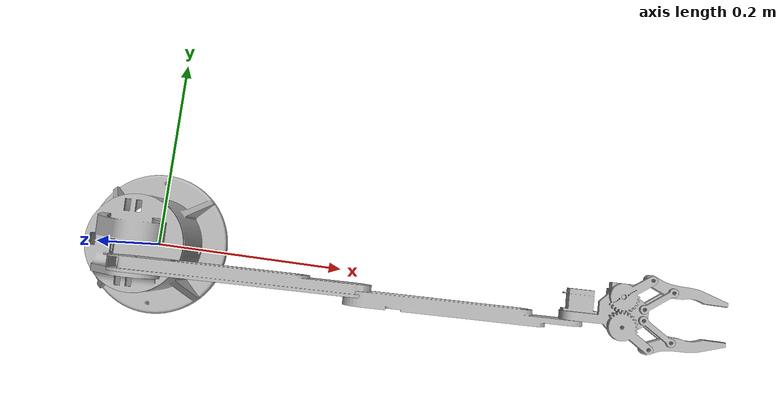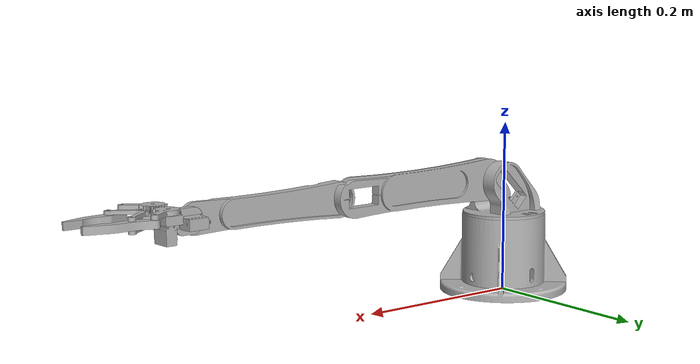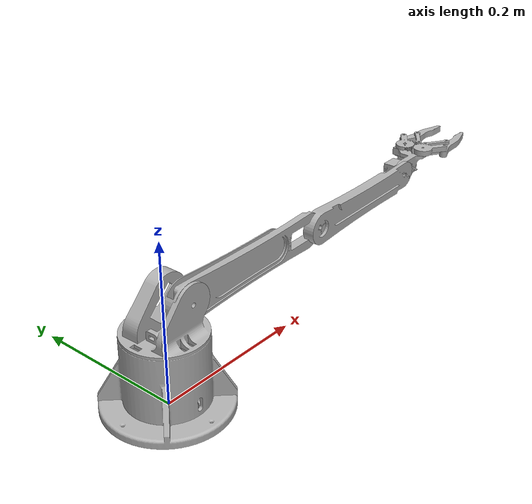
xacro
<?xml version="1.0" ?>
<robot name="RIVO" xmlns:xacro="http://www.ros.org/wiki/xacro">
  <xacro:include filename="$(find RIVO_description)/urdf/materials.xacro" />
  <xacro:include filename="$(find RIVO_description)/urdf/RIVO.trans" />
  <xacro:include filename="$(find RIVO_description)/urdf/RIVO.gazebo" />

  <link name="dummy_link">
    <pose>0 0 0 0 0 0</pose>
  </link>

  <joint name="dummy_joint" type="fixed">
    <parent link="dummy_link"/>
    <child link="base_link"/>
  </joint>

  <link name="base_link">
    <inertial>
      <origin xyz="0.002894864480150963 0.0004061893631920555 0.029121311645850093" rpy="0 0 0"/>
      <mass value="100.3408931898157137"/>
      <inertia ixx="45.21" iyy="48.86" izz="60.7" ixy="4e-02" iyz="-9e-02" ixz="5.9e-01"/>
    </inertial>
    <visual>
      <origin xyz="0 0 0" rpy="0 0 0"/>
      <geometry>
        <mesh filename="package://RIVO_description/meshes/base_link.stl" scale="0.001 0.001 0.001"/>
      </geometry>
      <material name="silver"/>
    </visual>
    <collision>
      <origin xyz="0 0 0" rpy="0 0 0"/>
      <geometry>
        <mesh filename="package://RIVO_description/meshes/base_link.stl" scale="0.001 0.001 0.001"/>
      </geometry>
    </collision>
  </link>

  <link name="link_2_1">
    <inertial>
      <origin xyz="0.002083562313261399 -0.003064482171298019 0.019940090429391252" rpy="0 0 0"/>
      <mass value="0.688307702528786"/>
      <inertia ixx="0.000549" iyy="0.000566" izz="0.000619" ixy="6e-06" iyz="1.3e-05" ixz="-6.5e-05"/>
    </inertial>
    <visual>
      <origin xyz="3.5e-05 -1.6e-05 -0.091498" rpy="0 0 0"/>
      <geometry>
        <mesh filename="package://RIVO_description/meshes/link_2_1.stl" scale="0.001 0.001 0.001"/>
      </geometry>
      <material name="silver"/>
    </visual>
    <collision>
      <origin xyz="3.5e-05 -1.6e-05 -0.091498" rpy="0 0 0"/>
      <geometry>
        <mesh filename="package://RIVO_description/meshes/link_2_1.stl" scale="0.001 0.001 0.001"/>
      </geometry>
    </collision>
  </link>

  <link name="link_4_1">
    <inertial>
      <origin xyz="0.08125834087790981 -0.001122555428102228 0.0002941862194928979" rpy="0 0 0"/>
      <mass value="0.46578916720940555"/>
      <inertia ixx="6.1e-05" iyy="0.001753" izz="0.001704" ixy="-4.8e-05" iyz="-0.0" ixz="-1.2e-05"/>
    </inertial>
    <visual>
      <origin xyz="-0.231507 0.019199 -0.131143" rpy="0 0 0"/>
      <geometry>
        <mesh filename="package://RIVO_description/meshes/link_4_1.stl" scale="0.001 0.001 0.001"/>
      </geometry>
      <material name="silver"/>
    </visual>
    <collision>
      <origin xyz="-0.231507 0.019199 -0.131143" rpy="0 0 0"/>
      <geometry>
        <mesh filename="package://RIVO_description/meshes/link_4_1.stl" scale="0.001 0.001 0.001"/>
      </geometry>
    </collision>
  </link>

  <link name="g_part_12_1">
    <inertial>
      <origin xyz="0.012456635259577353 0.009213868537273885 0.0020449037369225376" rpy="0 0 0"/>
      <mass value="0.006270284943512531"/>
      <inertia ixx="0.0" iyy="1e-06" izz="1e-06" ixy="-0.0" iyz="-0.0" ixz="-0.0"/>
    </inertial>
    <visual>
      <origin xyz="-0.484567 -0.00431 -0.146738" rpy="0 0 0"/>
      <geometry>
        <mesh filename="package://RIVO_description/meshes/g_part_12_1.stl" scale="0.001 0.001 0.001"/>
      </geometry>
      <material name="silver"/>
    </visual>
    <collision>
      <origin xyz="-0.484567 -0.00431 -0.146738" rpy="0 0 0"/>
      <geometry>
        <mesh filename="package://RIVO_description/meshes/g_part_12_1.stl" scale="0.001 0.001 0.001"/>
      </geometry>
    </collision>
  </link>

  <link name="g_part_4_1">
    <inertial>
      <origin xyz="0.013134263289696746 -0.008251164752194753 0.0019147897203106445" rpy="0 0 0"/>
      <mass value="0.006270284943499826"/>
      <inertia ixx="0.0" iyy="1e-06" izz="1e-06" ixy="0.0" iyz="-0.0" ixz="0.0"/>
    </inertial>
    <visual>
      <origin xyz="-0.484828 0.005686 -0.146663" rpy="0 0 0"/>
      <geometry>
        <mesh filename="package://RIVO_description/meshes/g_part_4_1.stl" scale="0.001 0.001 0.001"/>
      </geometry>
      <material name="silver"/>
    </visual>
    <collision>
      <origin xyz="-0.484828 0.005686 -0.146663" rpy="0 0 0"/>
      <geometry>
        <mesh filename="package://RIVO_description/meshes/g_part_4_1.stl" scale="0.001 0.001 0.001"/>
      </geometry>
    </collision>
  </link>

  <link name="g_part_8_1">
    <inertial>
      <origin xyz="0.0105618667457274 0.00787037076182677 -0.004894936320047616" rpy="0 0 0"/>
      <mass value="0.007386988595910961"/>
      <inertia ixx="0.0" iyy="1e-06" izz="1e-06" ixy="-0.0" iyz="0.0" ixz="0.0"/>
    </inertial>
    <visual>
      <origin xyz="-0.484556 -0.004351 -0.141169" rpy="0 0 0"/>
      <geometry>
        <mesh filename="package://RIVO_description/meshes/g_part_8_1.stl" scale="0.001 0.001 0.001"/>
      </geometry>
      <material name="silver"/>
    </visual>
    <collision>
      <origin xyz="-0.484556 -0.004351 -0.141169" rpy="0 0 0"/>
      <geometry>
        <mesh filename="package://RIVO_description/meshes/g_part_8_1.stl" scale="0.001 0.001 0.001"/>
      </geometry>
    </collision>
  </link>

  <link name="g_part_2_1">
    <inertial>
      <origin xyz="-0.00036726587359098284 0.01348177608821506 -0.00855097204214511" rpy="0 0 0"/>
      <mass value="0.05700410540308347"/>
      <inertia ixx="6e-06" iyy="4e-06" izz="3e-06" ixy="0.0" iyz="0.0" ixz="-0.0"/>
    </inertial>
    <visual>
      <origin xyz="-0.464814 0.006035 -0.136628" rpy="0 0 0"/>
      <geometry>
        <mesh filename="package://RIVO_description/meshes/g_part_2_1.stl" scale="0.001 0.001 0.001"/>
      </geometry>
      <material name="silver"/>
    </visual>
    <collision>
      <origin xyz="-0.464814 0.006035 -0.136628" rpy="0 0 0"/>
      <geometry>
        <mesh filename="package://RIVO_description/meshes/g_part_2_1.stl" scale="0.001 0.001 0.001"/>
      </geometry>
    </collision>
  </link>

  <link name="g_part_9_1">
    <inertial>
      <origin xyz="0.005021384222760994 -0.0025433255854703206 0.0034715138074274954" rpy="0 0 0"/>
      <mass value="0.0362891624976011"/>
      <inertia ixx="3e-06" iyy="4e-06" izz="6e-06" ixy="2e-06" iyz="-0.0" ixz="0.0"/>
    </inertial>
    <visual>
      <origin xyz="-0.465043 0.014202 -0.146068" rpy="0 0 0"/>
      <geometry>
        <mesh filename="package://RIVO_description/meshes/g_part_9_1.stl" scale="0.001 0.001 0.001"/>
      </geometry>
      <material name="silver"/>
    </visual>
    <collision>
      <origin xyz="-0.465043 0.014202 -0.146068" rpy="0 0 0"/>
      <geometry>
        <mesh filename="package://RIVO_description/meshes/g_part_9_1.stl" scale="0.001 0.001 0.001"/>
      </geometry>
    </collision>
  </link>

  <link name="g_part_10_1">
    <inertial>
      <origin xyz="-0.014598965910585904 0.008272324580325768 8.800201478362246e-05" rpy="0 0 0"/>
      <mass value="0.05700410540308428"/>
      <inertia ixx="4e-06" iyy="3e-06" izz="6e-06" ixy="-0.0" iyz="-0.0" ixz="0.0"/>
    </inertial>
    <visual>
      <origin xyz="-0.444042 0.006395 -0.132164" rpy="0 0 0"/>
      <geometry>
        <mesh filename="package://RIVO_description/meshes/g_part_10_1.stl" scale="0.001 0.001 0.001"/>
      </geometry>
      <material name="silver"/>
    </visual>
    <collision>
      <origin xyz="-0.444042 0.006395 -0.132164" rpy="0 0 0"/>
      <geometry>
        <mesh filename="package://RIVO_description/meshes/g_part_10_1.stl" scale="0.001 0.001 0.001"/>
      </geometry>
    </collision>
  </link>

  <link name="g_part_1_1">
    <inertial>
      <origin xyz="0.036423386056162965 0.01149451999851355 0.006746851708180762" rpy="0 0 0"/>
      <mass value="0.1054118615130382"/>
      <inertia ixx="1.9e-05" iyy="4.8e-05" izz="5.5e-05" ixy="-1e-05" iyz="-3e-06" ixz="-9e-06"/>
    </inertial>
    <visual>
      <origin xyz="-0.416441 0.014369 -0.132156" rpy="0 0 0"/>
      <geometry>
        <mesh filename="package://RIVO_description/meshes/g_part_1_1.stl" scale="0.001 0.001 0.001"/>
      </geometry>
      <material name="silver"/>
    </visual>
    <collision>
      <origin xyz="-0.416441 0.014369 -0.132156" rpy="0 0 0"/>
      <geometry>
        <mesh filename="package://RIVO_description/meshes/g_part_1_1.stl" scale="0.001 0.001 0.001"/>
      </geometry>
    </collision>
  </link>

  <link name="g_part_6_1">
    <inertial>
      <origin xyz="0.010217406066357015 -0.0017233499857305518 0.004218909480987715" rpy="0 0 0"/>
      <mass value="0.04741956072106952"/>
      <inertia ixx="1e-06" iyy="1.9e-05" izz="2e-05" ixy="-3e-06" iyz="0.0" ixz="0.0"/>
    </inertial>
    <visual>
      <origin xyz="-0.511072 0.022091 -0.137423" rpy="0 0 0"/>
      <geometry>
        <mesh filename="package://RIVO_description/meshes/g_part_6_1.stl" scale="0.001 0.001 0.001"/>
      </geometry>
      <material name="silver"/>
    </visual>
    <collision>
      <origin xyz="-0.511072 0.022091 -0.137423" rpy="0 0 0"/>
      <geometry>
        <mesh filename="package://RIVO_description/meshes/g_part_6_1.stl" scale="0.001 0.001 0.001"/>
      </geometry>
    </collision>
  </link>

  <link name="g_part_7_1">
    <inertial>
      <origin xyz="0.011136128559519232 -0.006954489521749285 -0.005005307666391873" rpy="0 0 0"/>
      <mass value="0.007386988595910908"/>
      <inertia ixx="0.0" iyy="1e-06" izz="1e-06" ixy="0.0" iyz="-0.0" ixz="0.0"/>
    </inertial>
    <visual>
      <origin xyz="-0.484818 0.005645 -0.141094" rpy="0 0 0"/>
      <geometry>
        <mesh filename="package://RIVO_description/meshes/g_part_7_1.stl" scale="0.001 0.001 0.001"/>
      </geometry>
      <material name="silver"/>
    </visual>
    <collision>
      <origin xyz="-0.484818 0.005645 -0.141094" rpy="0 0 0"/>
      <geometry>
        <mesh filename="package://RIVO_description/meshes/g_part_7_1.stl" scale="0.001 0.001 0.001"/>
      </geometry>
    </collision>
  </link>

  <link name="g_part_3_1">
    <inertial>
      <origin xyz="-0.01973607073111644 -0.01515006847613011 0.002516844630100129" rpy="0 0 0"/>
      <mass value="0.02397572621792568"/>
      <inertia ixx="2e-06" iyy="2e-06" izz="4e-06" ixy="-1e-06" iyz="-0.0" ixz="0.0"/>
    </inertial>
    <visual>
      <origin xyz="-0.489201 -0.031312 -0.146929" rpy="0 0 0"/>
      <geometry>
        <mesh filename="package://RIVO_description/meshes/g_part_3_1.stl" scale="0.001 0.001 0.001"/>
      </geometry>
      <material name="silver"/>
    </visual>
    <collision>
      <origin xyz="-0.489201 -0.031312 -0.146929" rpy="0 0 0"/>
      <geometry>
        <mesh filename="package://RIVO_description/meshes/g_part_3_1.stl" scale="0.001 0.001 0.001"/>
      </geometry>
    </collision>
  </link>

  <link name="g_part_5_1">
    <inertial>
      <origin xyz="0.010187463177970035 0.0018070450955312463 -0.004255435248756628" rpy="0 0 0"/>
      <mass value="0.0474195607210694"/>
      <inertia ixx="1e-06" iyy="1.9e-05" izz="2e-05" ixy="3e-06" iyz="-0.0" ixz="0.0"/>
    </inertial>
    <visual>
      <origin xyz="-0.509473 -0.022767 -0.146828" rpy="0 0 0"/>
      <geometry>
        <mesh filename="package://RIVO_description/meshes/g_part_5_1.stl" scale="0.001 0.001 0.001"/>
      </geometry>
      <material name="silver"/>
    </visual>
    <collision>
      <origin xyz="-0.509473 -0.022767 -0.146828" rpy="0 0 0"/>
      <geometry>
        <mesh filename="package://RIVO_description/meshes/g_part_5_1.stl" scale="0.001 0.001 0.001"/>
      </geometry>
    </collision>
  </link>

  <link name="link_3_1">
    <inertial>
      <origin xyz="0.08880680552106898 0.006923559791520796 -0.001742253363287788" rpy="0 0 0"/>
      <mass value="0.6955411833829301"/>
      <inertia ixx="0.000129" iyy="0.003467" izz="0.003356" ixy="-5.6e-05" iyz="1e-06" ixz="-6e-06"/>
    </inertial>
    <visual>
      <origin xyz="-0.014479 0.022897 -0.131606" rpy="0 0 0"/>
      <geometry>
        <mesh filename="package://RIVO_description/meshes/link_3_1.stl" scale="0.001 0.001 0.001"/>
      </geometry>
      <material name="silver"/>
    </visual>
    <collision>
      <origin xyz="-0.014479 0.022897 -0.131606" rpy="0 0 0"/>
      <geometry>
        <mesh filename="package://RIVO_description/meshes/link_3_1.stl" scale="0.001 0.001 0.001"/>
      </geometry>
    </collision>
  </link>

  <joint name="dof_1" type="revolute">
    <origin xyz="-3.5e-05 1.6e-05 0.091498" rpy="0 0 0"/>
    <parent link="base_link"/>
    <child link="link_2_1"/>
    <axis xyz="2.3e-05 0.007455 -0.999972"/>
    <limit lower="-1.57" upper="1.57" effort="300" velocity="3"/>
  </joint>

  <joint name="dof_2" type="revolute">
    <origin xyz="0.014514 -0.022913 0.040108" rpy="0 0 0"/>
    <parent link="link_2_1"/>
    <child link="link_3_1"/>
    <axis xyz="0.026148 -0.99963 -0.007452"/>
    <limit lower="-1.57" upper="1.57" effort="300" velocity="3"/>
  </joint>

  <joint name="dof_3" type="revolute">
    <origin xyz="0.217028 0.003698 -0.000463" rpy="0 0 0"/>
    <parent link="link_3_1"/>
    <child link="link_4_1"/>
    <axis xyz="0.026148 -0.99963 -0.007452"/>
    <limit lower="-3.142" upper="0" effort="300" velocity="3"/>
  </joint>

  <joint name="dof_4" type="revolute">
    <origin xyz="0.184934 0.00483 0.001013" rpy="0 0 0"/>
    <parent link="link_4_1"/>
    <child link="g_part_1_1"/>
    <axis xyz="0.026148 -0.99963 -0.007452"/>
    <limit lower="-3.142" upper="3.142" effort="300" velocity="3"/>
  </joint>

  <joint name="Rigid 6" type="fixed">
    <origin xyz="0.068126 0.018679 0.014582" rpy="0 0 0"/>
    <parent link="g_part_1_1"/>
    <child link="g_part_12_1"/>
  </joint>

  <joint name="Rigid 9" type="fixed">
    <origin xyz="0.068387 0.008683 0.014507" rpy="0 0 0"/>
    <parent link="g_part_1_1"/>
    <child link="g_part_4_1"/>
  </joint>

  <joint name="Rigid 10" type="fixed">
    <origin xyz="0.068115 0.01872 0.009013" rpy="0 0 0"/>
    <parent link="g_part_1_1"/>
    <child link="g_part_8_1"/>
  </joint>

  <joint name="Rigid 13" type="fixed">
    <origin xyz="0.048373 0.008334 0.004472" rpy="0 0 0"/>
    <parent link="g_part_1_1"/>
    <child link="g_part_2_1"/>
  </joint>

  <joint name="Rigid 14" type="fixed">
    <origin xyz="0.048602 0.000167 0.013912" rpy="0 0 0"/>
    <parent link="g_part_1_1"/>
    <child link="g_part_9_1"/>
  </joint>

  <joint name="Rigid 16" type="fixed">
    <origin xyz="0.027601 0.007974 8e-06" rpy="0 0 0"/>
    <parent link="g_part_1_1"/>
    <child link="g_part_10_1"/>
  </joint>

  <joint name="Rigid 18" type="fixed">
    <origin xyz="0.026254 -0.016446 -0.003671" rpy="0 0 0"/>
    <parent link="g_part_7_1"/>
    <child link="g_part_6_1"/>
  </joint>

  <joint name="Rigid 19" type="fixed">
    <origin xyz="0.068377 0.008724 0.008938" rpy="0 0 0"/>
    <parent link="g_part_1_1"/>
    <child link="g_part_7_1"/>
  </joint>

  <joint name="Rigid 21" type="fixed">
    <origin xyz="-0.020272 0.008545 0.000101" rpy="0 0 0"/>
    <parent link="g_part_5_1"/>
    <child link="g_part_3_1"/>
  </joint>

  <joint name="Rigid 22" type="fixed">
    <origin xyz="0.024906 0.018457 9e-05" rpy="0 0 0"/>
    <parent link="g_part_12_1"/>
    <child link="g_part_5_1"/>
  </joint>
  <transmission name="dof_1_trans">
    <type>transmission_interface/SimpleTransmission</type>

    <joint name="dof_1">
      <hardwareInterface>hardware_interface/EffortJointInterface</hardwareInterface>
    </joint>

    <actuator name="dof_1_motor">
      <hardwareInterface>hardware_interface/EffortJointInterface</hardwareInterface>
      <mechanicalReduction>1</mechanicalReduction>
    </actuator>
  </transmission>

  <transmission name="dof_2_trans">
    <type>transmission_interface/SimpleTransmission</type>

    <joint name="dof_2">
      <hardwareInterface>hardware_interface/EffortJointInterface</hardwareInterface>
    </joint>

    <actuator name="dof_2_motor">
      <hardwareInterface>hardware_interface/EffortJointInterface</hardwareInterface>
      <mechanicalReduction>1</mechanicalReduction>
    </actuator>
  </transmission>

  <transmission name="dof_3_trans">
    <type>transmission_interface/SimpleTransmission</type>

    <joint name="dof_3">
      <hardwareInterface>hardware_interface/EffortJointInterface</hardwareInterface>
    </joint>

    <actuator name="dof_3_motor">
      <hardwareInterface>hardware_interface/EffortJointInterface</hardwareInterface>
      <mechanicalReduction>1</mechanicalReduction>
    </actuator>
  </transmission>

  <transmission name="dof_4_trans">
    <type>transmission_interface/SimpleTransmission</type>

    <joint name="dof_4">
      <hardwareInterface>hardware_interface/EffortJointInterface</hardwareInterface>
    </joint>

    <actuator name="dof_4_motor">
      <hardwareInterface>hardware_interface/EffortJointInterface</hardwareInterface>
      <mechanicalReduction>1</mechanicalReduction>
    </actuator>
  </transmission>
</robot>

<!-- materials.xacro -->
<robot name="RIVO" xmlns:xacro="http://www.ros.org/wiki/xacro" >

<material name="silver">
  <color rgba="0.700 0.700 0.700 1.000"/>
</material>

</robot>

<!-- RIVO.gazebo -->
<robot name="RIVO" xmlns:xacro="http://www.ros.org/wiki/xacro" >

<xacro:property name="body_color" value="Gazebo/Silver" />

<gazebo>
  <plugin name="control" filename="libgazebo_ros_control.so"/>
</gazebo>
<gazebo reference="base_link">
  <material>${body_color}</material>
  <mu1>0.2</mu1>
  <mu2>0.2</mu2>
  <selfCollide>true</selfCollide>
  <gravity>true</gravity>
</gazebo>

<gazebo reference="link_2_1">
  <material>${body_color}</material>
  <mu1>0.2</mu1>
  <mu2>0.2</mu2>
  <selfCollide>true</selfCollide>
</gazebo>

<gazebo reference="link_4_1">
  <material>${body_color}</material>
  <mu1>0.2</mu1>
  <mu2>0.2</mu2>
  <selfCollide>true</selfCollide>
</gazebo>

<gazebo reference="g_part_12_1">
  <material>${body_color}</material>
  <mu1>0.2</mu1>
  <mu2>0.2</mu2>
  <selfCollide>true</selfCollide>
</gazebo>

<gazebo reference="g_part_4_1">
  <material>${body_color}</material>
  <mu1>0.2</mu1>
  <mu2>0.2</mu2>
  <selfCollide>true</selfCollide>
</gazebo>

<gazebo reference="g_part_8_1">
  <material>${body_color}</material>
  <mu1>0.2</mu1>
  <mu2>0.2</mu2>
  <selfCollide>true</selfCollide>
</gazebo>

<gazebo reference="g_part_2_1">
  <material>${body_color}</material>
  <mu1>0.2</mu1>
  <mu2>0.2</mu2>
  <selfCollide>true</selfCollide>
</gazebo>

<gazebo reference="g_part_9_1">
  <material>${body_color}</material>
  <mu1>0.2</mu1>
  <mu2>0.2</mu2>
  <selfCollide>true</selfCollide>
</gazebo>

<gazebo reference="g_part_10_1">
  <material>${body_color}</material>
  <mu1>0.2</mu1>
  <mu2>0.2</mu2>
  <selfCollide>true</selfCollide>
</gazebo>

<gazebo reference="g_part_1_1">
  <material>${body_color}</material>
  <mu1>0.2</mu1>
  <mu2>0.2</mu2>
  <selfCollide>true</selfCollide>
</gazebo>

<gazebo reference="g_part_6_1">
  <material>${body_color}</material>
  <mu1>0.2</mu1>
  <mu2>0.2</mu2>
  <selfCollide>true</selfCollide>
</gazebo>

<gazebo reference="g_part_7_1">
  <material>${body_color}</material>
  <mu1>0.2</mu1>
  <mu2>0.2</mu2>
  <selfCollide>true</selfCollide>
</gazebo>

<gazebo reference="g_part_3_1">
  <material>${body_color}</material>
  <mu1>0.2</mu1>
  <mu2>0.2</mu2>
  <selfCollide>true</selfCollide>
</gazebo>

<gazebo reference="g_part_5_1">
  <material>${body_color}</material>
  <mu1>0.2</mu1>
  <mu2>0.2</mu2>
  <selfCollide>true</selfCollide>
</gazebo>

<gazebo reference="link_3_1">
  <material>${body_color}</material>
  <mu1>0.2</mu1>
  <mu2>0.2</mu2>
  <selfCollide>true</selfCollide>
</gazebo>

</robot>
